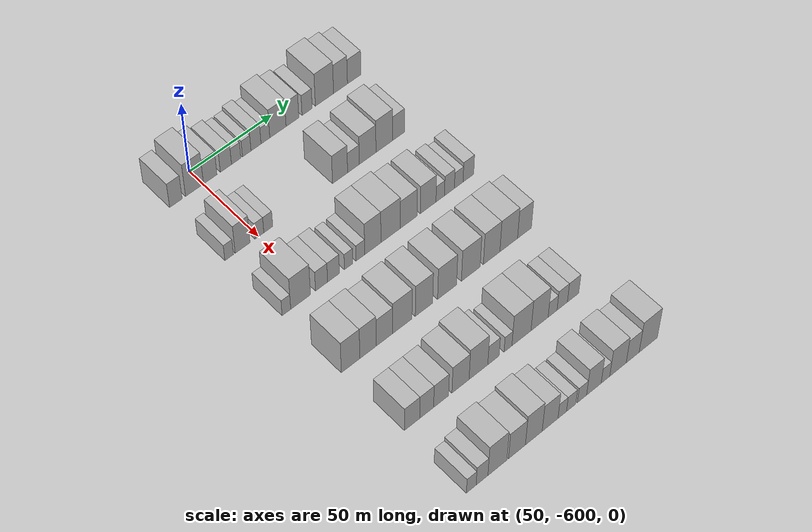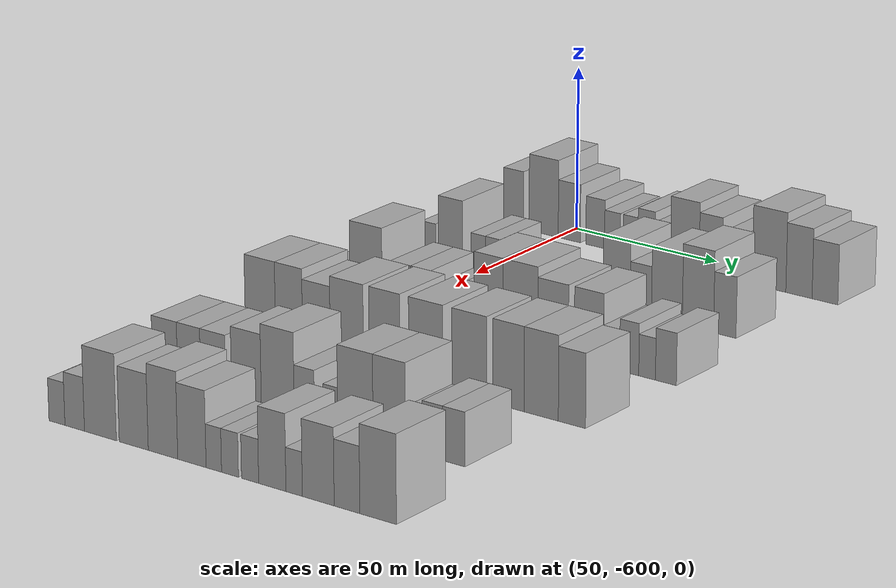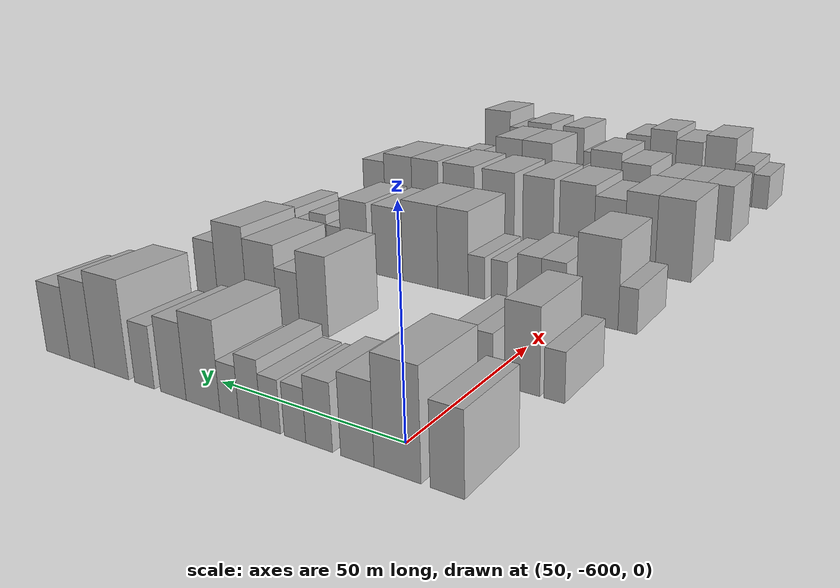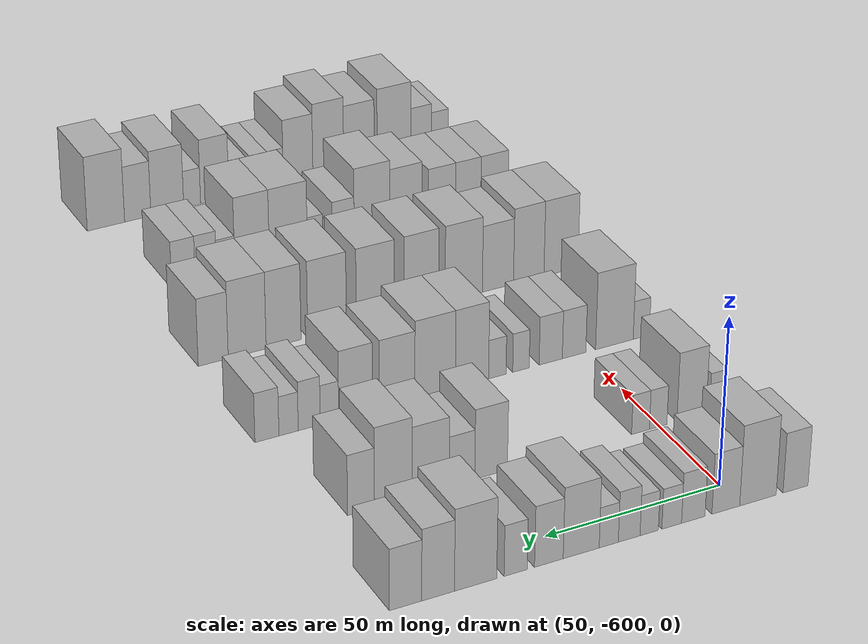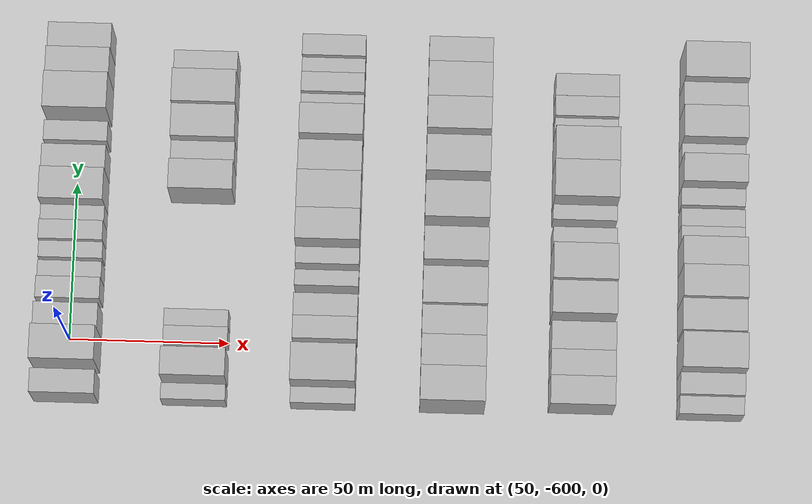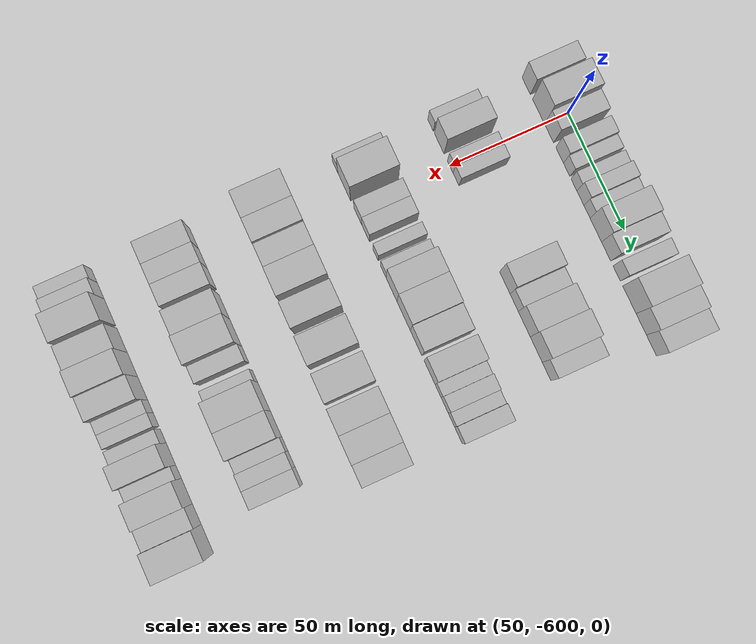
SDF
<sdf version="1.6">
 <world name="default">
  <model name="building_1">
   <static>1</static>
   <pose>50.0000 -616.2882 0 0.000000 0.000000 0.000000</pose>
   <link name="link">
    <pose>0 0 9.00 0 0 0</pose>
    <collision name="collision"><geometry><box><size>20.0000 7.4237 18.0000</size></box></geometry></collision>
    <visual name="visual">
     <cast_shadows>0</cast_shadows>
     <geometry><box><size>20.0000 7.4237 18.0000</size></box></geometry>
     <material>
      <script>
       <uri>model://HANNAS_wall/materials/scripts</uri>
       <uri>model://HANNAS_wall/materials/textures</uri>
       <name>vrc/HANNAS_wall</name>
      </script>
     </material>
    </visual>
   </link>
  </model>
  <model name="building_2">
   <static>1</static>
   <pose>50.0000 -605.2129 0 0.000000 0.000000 0.000000</pose>
   <link name="link">
    <pose>0 0 12.00 0 0 0</pose>
    <collision name="collision"><geometry><box><size>20.0000 10.7267 24.0000</size></box></geometry></collision>
    <visual name="visual">
     <cast_shadows>0</cast_shadows>
     <geometry><box><size>20.0000 10.7267 24.0000</size></box></geometry>
     <material>
      <script>
       <uri>model://HANNAS_wall/materials/scripts</uri>
       <uri>model://HANNAS_wall/materials/textures</uri>
       <name>vrc/HANNAS_wall</name>
      </script>
     </material>
    </visual>
   </link>
  </model>
  <model name="building_3">
   <static>1</static>
   <pose>50.0000 -595.8107 0 0.000000 0.000000 0.000000</pose>
   <link name="link">
    <pose>0 0 9.00 0 0 0</pose>
    <collision name="collision"><geometry><box><size>20.0000 8.0778 18.0000</size></box></geometry></collision>
    <visual name="visual">
     <cast_shadows>0</cast_shadows>
     <geometry><box><size>20.0000 8.0778 18.0000</size></box></geometry>
     <material>
      <script>
       <uri>model://HANNAS_wall/materials/scripts</uri>
       <uri>model://HANNAS_wall/materials/textures</uri>
       <name>vrc/HANNAS_wall</name>
      </script>
     </material>
    </visual>
   </link>
  </model>
  <model name="building_4">
   <static>1</static>
   <pose>50.0000 -586.3865 0 0.000000 0.000000 0.000000</pose>
   <link name="link">
    <pose>0 0 7.50 0 0 0</pose>
    <collision name="collision"><geometry><box><size>20.0000 6.7706 15.0000</size></box></geometry></collision>
    <visual name="visual">
     <cast_shadows>0</cast_shadows>
     <geometry><box><size>20.0000 6.7706 15.0000</size></box></geometry>
     <material>
      <script>
       <uri>model://HANNAS_wall/materials/scripts</uri>
       <uri>model://HANNAS_wall/materials/textures</uri>
       <name>vrc/HANNAS_wall</name>
      </script>
     </material>
    </visual>
   </link>
  </model>
  <model name="building_5">
   <static>1</static>
   <pose>50.0000 -580.1825 0 0.000000 0.000000 0.000000</pose>
   <link name="link">
    <pose>0 0 6.00 0 0 0</pose>
    <collision name="collision"><geometry><box><size>20.0000 5.6373 12.0000</size></box></geometry></collision>
    <visual name="visual">
     <cast_shadows>0</cast_shadows>
     <geometry><box><size>20.0000 5.6373 12.0000</size></box></geometry>
     <material>
      <script>
       <uri>model://HANNAS_wall/materials/scripts</uri>
       <uri>model://HANNAS_wall/materials/textures</uri>
       <name>vrc/HANNAS_wall</name>
      </script>
     </material>
    </visual>
   </link>
  </model>
  <model name="building_6">
   <static>1</static>
   <pose>50.0000 -573.7439 0 0.000000 0.000000 0.000000</pose>
   <link name="link">
    <pose>0 0 6.00 0 0 0</pose>
    <collision name="collision"><geometry><box><size>20.0000 5.2398 12.0000</size></box></geometry></collision>
    <visual name="visual">
     <cast_shadows>0</cast_shadows>
     <geometry><box><size>20.0000 5.2398 12.0000</size></box></geometry>
     <material>
      <script>
       <uri>model://HANNAS_wall/materials/scripts</uri>
       <uri>model://HANNAS_wall/materials/textures</uri>
       <name>vrc/HANNAS_wall</name>
      </script>
     </material>
    </visual>
   </link>
  </model>
  <model name="building_7">
   <static>1</static>
   <pose>50.0000 -568.0498 0 0.000000 0.000000 0.000000</pose>
   <link name="link">
    <pose>0 0 7.50 0 0 0</pose>
    <collision name="collision"><geometry><box><size>20.0000 6.1485 15.0000</size></box></geometry></collision>
    <visual name="visual">
     <cast_shadows>0</cast_shadows>
     <geometry><box><size>20.0000 6.1485 15.0000</size></box></geometry>
     <material>
      <script>
       <uri>model://HANNAS_wall/materials/scripts</uri>
       <uri>model://HANNAS_wall/materials/textures</uri>
       <name>vrc/HANNAS_wall</name>
      </script>
     </material>
    </visual>
   </link>
  </model>
  <model name="building_8">
   <static>1</static>
   <pose>50.0000 -562.2746 0 0.000000 0.000000 0.000000</pose>
   <link name="link">
    <pose>0 0 6.00 0 0 0</pose>
    <collision name="collision"><geometry><box><size>20.0000 5.4018 12.0000</size></box></geometry></collision>
    <visual name="visual">
     <cast_shadows>0</cast_shadows>
     <geometry><box><size>20.0000 5.4018 12.0000</size></box></geometry>
     <material>
      <script>
       <uri>model://HANNAS_wall/materials/scripts</uri>
       <uri>model://HANNAS_wall/materials/textures</uri>
       <name>vrc/HANNAS_wall</name>
      </script>
     </material>
    </visual>
   </link>
  </model>
  <model name="building_9">
   <static>1</static>
   <pose>50.0000 -554.5312 0 0.000000 0.000000 0.000000</pose>
   <link name="link">
    <pose>0 0 10.50 0 0 0</pose>
    <collision name="collision"><geometry><box><size>20.0000 10.0851 21.0000</size></box></geometry></collision>
    <visual name="visual">
     <cast_shadows>0</cast_shadows>
     <geometry><box><size>20.0000 10.0851 21.0000</size></box></geometry>
     <material>
      <script>
       <uri>model://HANNAS_wall/materials/scripts</uri>
       <uri>model://HANNAS_wall/materials/textures</uri>
       <name>vrc/HANNAS_wall</name>
      </script>
     </material>
    </visual>
   </link>
  </model>
  <model name="building_10">
   <static>1</static>
   <pose>50.0000 -545.5108 0 0.000000 0.000000 0.000000</pose>
   <link name="link">
    <pose>0 0 9.00 0 0 0</pose>
    <collision name="collision"><geometry><box><size>20.0000 7.9555 18.0000</size></box></geometry></collision>
    <visual name="visual">
     <cast_shadows>0</cast_shadows>
     <geometry><box><size>20.0000 7.9555 18.0000</size></box></geometry>
     <material>
      <script>
       <uri>model://HANNAS_wall/materials/scripts</uri>
       <uri>model://HANNAS_wall/materials/textures</uri>
       <name>vrc/HANNAS_wall</name>
      </script>
     </material>
    </visual>
   </link>
  </model>
  <model name="building_11">
   <static>1</static>
   <pose>50.0000 -536.3424 0 0.000000 0.000000 0.000000</pose>
   <link name="link">
    <pose>0 0 7.50 0 0 0</pose>
    <collision name="collision"><geometry><box><size>20.0000 6.3814 15.0000</size></box></geometry></collision>
    <visual name="visual">
     <cast_shadows>0</cast_shadows>
     <geometry><box><size>20.0000 6.3814 15.0000</size></box></geometry>
     <material>
      <script>
       <uri>model://HANNAS_wall/materials/scripts</uri>
       <uri>model://HANNAS_wall/materials/textures</uri>
       <name>vrc/HANNAS_wall</name>
      </script>
     </material>
    </visual>
   </link>
  </model>
  <model name="building_12">
   <static>1</static>
   <pose>50.0000 -525.3938 0 0.000000 0.000000 0.000000</pose>
   <link name="link">
    <pose>0 0 12.00 0 0 0</pose>
    <collision name="collision"><geometry><box><size>20.0000 11.5157 24.0000</size></box></geometry></collision>
    <visual name="visual">
     <cast_shadows>0</cast_shadows>
     <geometry><box><size>20.0000 11.5157 24.0000</size></box></geometry>
     <material>
      <script>
       <uri>model://HANNAS_wall/materials/scripts</uri>
       <uri>model://HANNAS_wall/materials/textures</uri>
       <name>vrc/HANNAS_wall</name>
      </script>
     </material>
    </visual>
   </link>
  </model>
  <model name="building_13">
   <static>1</static>
   <pose>50.0000 -515.2146 0 0.000000 0.000000 0.000000</pose>
   <link name="link">
    <pose>0 0 10.50 0 0 0</pose>
    <collision name="collision"><geometry><box><size>20.0000 8.8427 21.0000</size></box></geometry></collision>
    <visual name="visual">
     <cast_shadows>0</cast_shadows>
     <geometry><box><size>20.0000 8.8427 21.0000</size></box></geometry>
     <material>
      <script>
       <uri>model://HANNAS_wall/materials/scripts</uri>
       <uri>model://HANNAS_wall/materials/textures</uri>
       <name>vrc/HANNAS_wall</name>
      </script>
     </material>
    </visual>
   </link>
  </model>
  <model name="building_14">
   <static>1</static>
   <pose>50.0000 -506.4676 0 0.000000 0.000000 0.000000</pose>
   <link name="link">
    <pose>0 0 9.00 0 0 0</pose>
    <collision name="collision"><geometry><box><size>20.0000 8.6514 18.0000</size></box></geometry></collision>
    <visual name="visual">
     <cast_shadows>0</cast_shadows>
     <geometry><box><size>20.0000 8.6514 18.0000</size></box></geometry>
     <material>
      <script>
       <uri>model://HANNAS_wall/materials/scripts</uri>
       <uri>model://HANNAS_wall/materials/textures</uri>
       <name>vrc/HANNAS_wall</name>
      </script>
     </material>
    </visual>
   </link>
  </model>
  <model name="building_139">
   <static>1</static>
   <pose>90.0000 -617.4869 0 0.000000 0.000000 0.000000</pose>
   <link name="link">
    <pose>0 0 6.00 0 0 0</pose>
    <collision name="collision"><geometry><box><size>20.0000 5.0261 12.0000</size></box></geometry></collision>
    <visual name="visual">
     <cast_shadows>0</cast_shadows>
     <geometry><box><size>20.0000 5.0261 12.0000</size></box></geometry>
     <material>
      <script>
       <uri>model://HANNAS_wall/materials/scripts</uri>
       <uri>model://HANNAS_wall/materials/textures</uri>
       <name>vrc/HANNAS_wall</name>
      </script>
     </material>
    </visual>
   </link>
  </model>
  <model name="building_140">
   <static>1</static>
   <pose>90.0000 -609.5663 0 0.000000 0.000000 0.000000</pose>
   <link name="link">
    <pose>0 0 10.50 0 0 0</pose>
    <collision name="collision"><geometry><box><size>20.0000 8.8152 21.0000</size></box></geometry></collision>
    <visual name="visual">
     <cast_shadows>0</cast_shadows>
     <geometry><box><size>20.0000 8.8152 21.0000</size></box></geometry>
     <material>
      <script>
       <uri>model://HANNAS_wall/materials/scripts</uri>
       <uri>model://HANNAS_wall/materials/textures</uri>
       <name>vrc/HANNAS_wall</name>
      </script>
     </material>
    </visual>
   </link>
  </model>
  <model name="building_141">
   <static>1</static>
   <pose>90.0000 -599.5417 0 0.000000 0.000000 0.000000</pose>
   <link name="link">
    <pose>0 0 6.00 0 0 0</pose>
    <collision name="collision"><geometry><box><size>20.0000 5.2339 12.0000</size></box></geometry></collision>
    <visual name="visual">
     <cast_shadows>0</cast_shadows>
     <geometry><box><size>20.0000 5.2339 12.0000</size></box></geometry>
     <material>
      <script>
       <uri>model://HANNAS_wall/materials/scripts</uri>
       <uri>model://HANNAS_wall/materials/textures</uri>
       <name>vrc/HANNAS_wall</name>
      </script>
     </material>
    </visual>
   </link>
  </model>
  <model name="building_142">
   <static>1</static>
   <pose>90.0000 -594.2603 0 0.000000 0.000000 0.000000</pose>
   <link name="link">
    <pose>0 0 6.00 0 0 0</pose>
    <collision name="collision"><geometry><box><size>20.0000 5.3288 12.0000</size></box></geometry></collision>
    <visual name="visual">
     <cast_shadows>0</cast_shadows>
     <geometry><box><size>20.0000 5.3288 12.0000</size></box></geometry>
     <material>
      <script>
       <uri>model://HANNAS_wall/materials/scripts</uri>
       <uri>model://HANNAS_wall/materials/textures</uri>
       <name>vrc/HANNAS_wall</name>
      </script>
     </material>
    </visual>
   </link>
  </model>
  <model name="building_143">
   <static>1</static>
   <pose>90.0000 -550.5708 0 0.000000 0.000000 0.000000</pose>
   <link name="link">
    <pose>0 0 10.50 0 0 0</pose>
    <collision name="collision"><geometry><box><size>20.0000 9.3501 21.0000</size></box></geometry></collision>
    <visual name="visual">
     <cast_shadows>0</cast_shadows>
     <geometry><box><size>20.0000 9.3501 21.0000</size></box></geometry>
     <material>
      <script>
       <uri>model://HANNAS_wall/materials/scripts</uri>
       <uri>model://HANNAS_wall/materials/textures</uri>
       <name>vrc/HANNAS_wall</name>
      </script>
     </material>
    </visual>
   </link>
  </model>
  <model name="building_144">
   <static>1</static>
   <pose>90.0000 -542.2516 0 0.000000 0.000000 0.000000</pose>
   <link name="link">
    <pose>0 0 7.50 0 0 0</pose>
    <collision name="collision"><geometry><box><size>20.0000 7.2884 15.0000</size></box></geometry></collision>
    <visual name="visual">
     <cast_shadows>0</cast_shadows>
     <geometry><box><size>20.0000 7.2884 15.0000</size></box></geometry>
     <material>
      <script>
       <uri>model://HANNAS_wall/materials/scripts</uri>
       <uri>model://HANNAS_wall/materials/textures</uri>
       <name>vrc/HANNAS_wall</name>
      </script>
     </material>
    </visual>
   </link>
  </model>
  <model name="building_145">
   <static>1</static>
   <pose>90.0000 -533.3865 0 0.000000 0.000000 0.000000</pose>
   <link name="link">
    <pose>0 0 10.50 0 0 0</pose>
    <collision name="collision"><geometry><box><size>20.0000 10.4418 21.0000</size></box></geometry></collision>
    <visual name="visual">
     <cast_shadows>0</cast_shadows>
     <geometry><box><size>20.0000 10.4418 21.0000</size></box></geometry>
     <material>
      <script>
       <uri>model://HANNAS_wall/materials/scripts</uri>
       <uri>model://HANNAS_wall/materials/textures</uri>
       <name>vrc/HANNAS_wall</name>
      </script>
     </material>
    </visual>
   </link>
  </model>
  <model name="building_146">
   <static>1</static>
   <pose>90.0000 -522.9116 0 0.000000 0.000000 0.000000</pose>
   <link name="link">
    <pose>0 0 12.00 0 0 0</pose>
    <collision name="collision"><geometry><box><size>20.0000 10.5080 24.0000</size></box></geometry></collision>
    <visual name="visual">
     <cast_shadows>0</cast_shadows>
     <geometry><box><size>20.0000 10.5080 24.0000</size></box></geometry>
     <material>
      <script>
       <uri>model://HANNAS_wall/materials/scripts</uri>
       <uri>model://HANNAS_wall/materials/textures</uri>
       <name>vrc/HANNAS_wall</name>
      </script>
     </material>
    </visual>
   </link>
  </model>
  <model name="building_147">
   <static>1</static>
   <pose>90.0000 -513.9200 0 0.000000 0.000000 0.000000</pose>
   <link name="link">
    <pose>0 0 9.00 0 0 0</pose>
    <collision name="collision"><geometry><box><size>20.0000 7.4751 18.0000</size></box></geometry></collision>
    <visual name="visual">
     <cast_shadows>0</cast_shadows>
     <geometry><box><size>20.0000 7.4751 18.0000</size></box></geometry>
     <material>
      <script>
       <uri>model://HANNAS_wall/materials/scripts</uri>
       <uri>model://HANNAS_wall/materials/textures</uri>
       <name>vrc/HANNAS_wall</name>
      </script>
     </material>
    </visual>
   </link>
  </model>
  <model name="building_265">
   <static>1</static>
   <pose>130.0000 -617.4726 0 0.000000 0.000000 0.000000</pose>
   <link name="link">
    <pose>0 0 6.00 0 0 0</pose>
    <collision name="collision"><geometry><box><size>20.0000 5.0547 12.0000</size></box></geometry></collision>
    <visual name="visual">
     <cast_shadows>0</cast_shadows>
     <geometry><box><size>20.0000 5.0547 12.0000</size></box></geometry>
     <material>
      <script>
       <uri>model://HANNAS_wall/materials/scripts</uri>
       <uri>model://HANNAS_wall/materials/textures</uri>
       <name>vrc/HANNAS_wall</name>
      </script>
     </material>
    </visual>
   </link>
  </model>
  <model name="building_266">
   <static>1</static>
   <pose>130.0000 -609.1242 0 0.000000 0.000000 0.000000</pose>
   <link name="link">
    <pose>0 0 12.00 0 0 0</pose>
    <collision name="collision"><geometry><box><size>20.0000 11.6421 24.0000</size></box></geometry></collision>
    <visual name="visual">
     <cast_shadows>0</cast_shadows>
     <geometry><box><size>20.0000 11.6421 24.0000</size></box></geometry>
     <material>
      <script>
       <uri>model://HANNAS_wall/materials/scripts</uri>
       <uri>model://HANNAS_wall/materials/textures</uri>
       <name>vrc/HANNAS_wall</name>
      </script>
     </material>
    </visual>
   </link>
  </model>
  <model name="building_267">
   <static>1</static>
   <pose>130.0000 -596.7009 0 0.000000 0.000000 0.000000</pose>
   <link name="link">
    <pose>0 0 7.50 0 0 0</pose>
    <collision name="collision"><geometry><box><size>20.0000 7.2046 15.0000</size></box></geometry></collision>
    <visual name="visual">
     <cast_shadows>0</cast_shadows>
     <geometry><box><size>20.0000 7.2046 15.0000</size></box></geometry>
     <material>
      <script>
       <uri>model://HANNAS_wall/materials/scripts</uri>
       <uri>model://HANNAS_wall/materials/textures</uri>
       <name>vrc/HANNAS_wall</name>
      </script>
     </material>
    </visual>
   </link>
  </model>
  <model name="building_268">
   <static>1</static>
   <pose>130.0000 -589.5621 0 0.000000 0.000000 0.000000</pose>
   <link name="link">
    <pose>0 0 7.50 0 0 0</pose>
    <collision name="collision"><geometry><box><size>20.0000 7.0729 15.0000</size></box></geometry></collision>
    <visual name="visual">
     <cast_shadows>0</cast_shadows>
     <geometry><box><size>20.0000 7.0729 15.0000</size></box></geometry>
     <material>
      <script>
       <uri>model://HANNAS_wall/materials/scripts</uri>
       <uri>model://HANNAS_wall/materials/textures</uri>
       <name>vrc/HANNAS_wall</name>
      </script>
     </material>
    </visual>
   </link>
  </model>
  <model name="building_269">
   <static>1</static>
   <pose>130.0000 -580.5328 0 0.000000 0.000000 0.000000</pose>
   <link name="link">
    <pose>0 0 6.00 0 0 0</pose>
    <collision name="collision"><geometry><box><size>20.0000 4.9857 12.0000</size></box></geometry></collision>
    <visual name="visual">
     <cast_shadows>0</cast_shadows>
     <geometry><box><size>20.0000 4.9857 12.0000</size></box></geometry>
     <material>
      <script>
       <uri>model://HANNAS_wall/materials/scripts</uri>
       <uri>model://HANNAS_wall/materials/textures</uri>
       <name>vrc/HANNAS_wall</name>
      </script>
     </material>
    </visual>
   </link>
  </model>
  <model name="building_270">
   <static>1</static>
   <pose>130.0000 -573.4048 0 0.000000 0.000000 0.000000</pose>
   <link name="link">
    <pose>0 0 6.00 0 0 0</pose>
    <collision name="collision"><geometry><box><size>20.0000 5.2704 12.0000</size></box></geometry></collision>
    <visual name="visual">
     <cast_shadows>0</cast_shadows>
     <geometry><box><size>20.0000 5.2704 12.0000</size></box></geometry>
     <material>
      <script>
       <uri>model://HANNAS_wall/materials/scripts</uri>
       <uri>model://HANNAS_wall/materials/textures</uri>
       <name>vrc/HANNAS_wall</name>
      </script>
     </material>
    </visual>
   </link>
  </model>
  <model name="building_271">
   <static>1</static>
   <pose>130.0000 -565.8251 0 0.000000 0.000000 0.000000</pose>
   <link name="link">
    <pose>0 0 12.00 0 0 0</pose>
    <collision name="collision"><geometry><box><size>20.0000 9.8889 24.0000</size></box></geometry></collision>
    <visual name="visual">
     <cast_shadows>0</cast_shadows>
     <geometry><box><size>20.0000 9.8889 24.0000</size></box></geometry>
     <material>
      <script>
       <uri>model://HANNAS_wall/materials/scripts</uri>
       <uri>model://HANNAS_wall/materials/textures</uri>
       <name>vrc/HANNAS_wall</name>
      </script>
     </material>
    </visual>
   </link>
  </model>
  <model name="building_272">
   <static>1</static>
   <pose>130.0000 -554.9040 0 0.000000 0.000000 0.000000</pose>
   <link name="link">
    <pose>0 0 12.00 0 0 0</pose>
    <collision name="collision"><geometry><box><size>20.0000 11.9534 24.0000</size></box></geometry></collision>
    <visual name="visual">
     <cast_shadows>0</cast_shadows>
     <geometry><box><size>20.0000 11.9534 24.0000</size></box></geometry>
     <material>
      <script>
       <uri>model://HANNAS_wall/materials/scripts</uri>
       <uri>model://HANNAS_wall/materials/textures</uri>
       <name>vrc/HANNAS_wall</name>
      </script>
     </material>
    </visual>
   </link>
  </model>
  <model name="building_273">
   <static>1</static>
   <pose>130.0000 -543.7478 0 0.000000 0.000000 0.000000</pose>
   <link name="link">
    <pose>0 0 10.50 0 0 0</pose>
    <collision name="collision"><geometry><box><size>20.0000 10.3589 21.0000</size></box></geometry></collision>
    <visual name="visual">
     <cast_shadows>0</cast_shadows>
     <geometry><box><size>20.0000 10.3589 21.0000</size></box></geometry>
     <material>
      <script>
       <uri>model://HANNAS_wall/materials/scripts</uri>
       <uri>model://HANNAS_wall/materials/textures</uri>
       <name>vrc/HANNAS_wall</name>
      </script>
     </material>
    </visual>
   </link>
  </model>
  <model name="building_274">
   <static>1</static>
   <pose>130.0000 -531.6636 0 0.000000 0.000000 0.000000</pose>
   <link name="link">
    <pose>0 0 10.50 0 0 0</pose>
    <collision name="collision"><geometry><box><size>20.0000 9.8095 21.0000</size></box></geometry></collision>
    <visual name="visual">
     <cast_shadows>0</cast_shadows>
     <geometry><box><size>20.0000 9.8095 21.0000</size></box></geometry>
     <material>
      <script>
       <uri>model://HANNAS_wall/materials/scripts</uri>
       <uri>model://HANNAS_wall/materials/textures</uri>
       <name>vrc/HANNAS_wall</name>
      </script>
     </material>
    </visual>
   </link>
  </model>
  <model name="building_275">
   <static>1</static>
   <pose>130.0000 -524.1002 0 0.000000 0.000000 0.000000</pose>
   <link name="link">
    <pose>0 0 6.00 0 0 0</pose>
    <collision name="collision"><geometry><box><size>20.0000 5.3172 12.0000</size></box></geometry></collision>
    <visual name="visual">
     <cast_shadows>0</cast_shadows>
     <geometry><box><size>20.0000 5.3172 12.0000</size></box></geometry>
     <material>
      <script>
       <uri>model://HANNAS_wall/materials/scripts</uri>
       <uri>model://HANNAS_wall/materials/textures</uri>
       <name>vrc/HANNAS_wall</name>
      </script>
     </material>
    </visual>
   </link>
  </model>
  <model name="building_276">
   <static>1</static>
   <pose>130.0000 -518.2867 0 0.000000 0.000000 0.000000</pose>
   <link name="link">
    <pose>0 0 7.50 0 0 0</pose>
    <collision name="collision"><geometry><box><size>20.0000 6.3098 15.0000</size></box></geometry></collision>
    <visual name="visual">
     <cast_shadows>0</cast_shadows>
     <geometry><box><size>20.0000 6.3098 15.0000</size></box></geometry>
     <material>
      <script>
       <uri>model://HANNAS_wall/materials/scripts</uri>
       <uri>model://HANNAS_wall/materials/textures</uri>
       <name>vrc/HANNAS_wall</name>
      </script>
     </material>
    </visual>
   </link>
  </model>
  <model name="building_277">
   <static>1</static>
   <pose>130.0000 -512.3871 0 0.000000 0.000000 0.000000</pose>
   <link name="link">
    <pose>0 0 6.00 0 0 0</pose>
    <collision name="collision"><geometry><box><size>20.0000 5.4895 12.0000</size></box></geometry></collision>
    <visual name="visual">
     <cast_shadows>0</cast_shadows>
     <geometry><box><size>20.0000 5.4895 12.0000</size></box></geometry>
     <material>
      <script>
       <uri>model://HANNAS_wall/materials/scripts</uri>
       <uri>model://HANNAS_wall/materials/textures</uri>
       <name>vrc/HANNAS_wall</name>
      </script>
     </material>
    </visual>
   </link>
  </model>
  <model name="building_278">
   <static>1</static>
   <pose>130.0000 -506.2444 0 0.000000 0.000000 0.000000</pose>
   <link name="link">
    <pose>0 0 7.50 0 0 0</pose>
    <collision name="collision"><geometry><box><size>20.0000 6.7959 15.0000</size></box></geometry></collision>
    <visual name="visual">
     <cast_shadows>0</cast_shadows>
     <geometry><box><size>20.0000 6.7959 15.0000</size></box></geometry>
     <material>
      <script>
       <uri>model://HANNAS_wall/materials/scripts</uri>
       <uri>model://HANNAS_wall/materials/textures</uri>
       <name>vrc/HANNAS_wall</name>
      </script>
     </material>
    </visual>
   </link>
  </model>
  <model name="building_402">
   <static>1</static>
   <pose>170.0000 -614.5802 0 0.000000 0.000000 0.000000</pose>
   <link name="link">
    <pose>0 0 12.00 0 0 0</pose>
    <collision name="collision"><geometry><box><size>20.0000 10.8396 24.0000</size></box></geometry></collision>
    <visual name="visual">
     <cast_shadows>0</cast_shadows>
     <geometry><box><size>20.0000 10.8396 24.0000</size></box></geometry>
     <material>
      <script>
       <uri>model://HANNAS_wall/materials/scripts</uri>
       <uri>model://HANNAS_wall/materials/textures</uri>
       <name>vrc/HANNAS_wall</name>
      </script>
     </material>
    </visual>
   </link>
  </model>
  <model name="building_403">
   <static>1</static>
   <pose>170.0000 -604.3481 0 0.000000 0.000000 0.000000</pose>
   <link name="link">
    <pose>0 0 12.00 0 0 0</pose>
    <collision name="collision"><geometry><box><size>20.0000 9.6246 24.0000</size></box></geometry></collision>
    <visual name="visual">
     <cast_shadows>0</cast_shadows>
     <geometry><box><size>20.0000 9.6246 24.0000</size></box></geometry>
     <material>
      <script>
       <uri>model://HANNAS_wall/materials/scripts</uri>
       <uri>model://HANNAS_wall/materials/textures</uri>
       <name>vrc/HANNAS_wall</name>
      </script>
     </material>
    </visual>
   </link>
  </model>
  <model name="building_404">
   <static>1</static>
   <pose>170.0000 -594.6599 0 0.000000 0.000000 0.000000</pose>
   <link name="link">
    <pose>0 0 10.50 0 0 0</pose>
    <collision name="collision"><geometry><box><size>20.0000 9.7518 21.0000</size></box></geometry></collision>
    <visual name="visual">
     <cast_shadows>0</cast_shadows>
     <geometry><box><size>20.0000 9.7518 21.0000</size></box></geometry>
     <material>
      <script>
       <uri>model://HANNAS_wall/materials/scripts</uri>
       <uri>model://HANNAS_wall/materials/textures</uri>
       <name>vrc/HANNAS_wall</name>
      </script>
     </material>
    </visual>
   </link>
  </model>
  <model name="building_405">
   <static>1</static>
   <pose>170.0000 -583.9959 0 0.000000 0.000000 0.000000</pose>
   <link name="link">
    <pose>0 0 12.00 0 0 0</pose>
    <collision name="collision"><geometry><box><size>20.0000 11.5762 24.0000</size></box></geometry></collision>
    <visual name="visual">
     <cast_shadows>0</cast_shadows>
     <geometry><box><size>20.0000 11.5762 24.0000</size></box></geometry>
     <material>
      <script>
       <uri>model://HANNAS_wall/materials/scripts</uri>
       <uri>model://HANNAS_wall/materials/textures</uri>
       <name>vrc/HANNAS_wall</name>
      </script>
     </material>
    </visual>
   </link>
  </model>
  <model name="building_406">
   <static>1</static>
   <pose>170.0000 -570.9323 0 0.000000 0.000000 0.000000</pose>
   <link name="link">
    <pose>0 0 12.00 0 0 0</pose>
    <collision name="collision"><geometry><box><size>20.0000 10.5510 24.0000</size></box></geometry></collision>
    <visual name="visual">
     <cast_shadows>0</cast_shadows>
     <geometry><box><size>20.0000 10.5510 24.0000</size></box></geometry>
     <material>
      <script>
       <uri>model://HANNAS_wall/materials/scripts</uri>
       <uri>model://HANNAS_wall/materials/textures</uri>
       <name>vrc/HANNAS_wall</name>
      </script>
     </material>
    </visual>
   </link>
  </model>
  <model name="building_407">
   <static>1</static>
   <pose>170.0000 -556.8683 0 0.000000 0.000000 0.000000</pose>
   <link name="link">
    <pose>0 0 12.00 0 0 0</pose>
    <collision name="collision"><geometry><box><size>20.0000 11.5770 24.0000</size></box></geometry></collision>
    <visual name="visual">
     <cast_shadows>0</cast_shadows>
     <geometry><box><size>20.0000 11.5770 24.0000</size></box></geometry>
     <material>
      <script>
       <uri>model://HANNAS_wall/materials/scripts</uri>
       <uri>model://HANNAS_wall/materials/textures</uri>
       <name>vrc/HANNAS_wall</name>
      </script>
     </material>
    </visual>
   </link>
  </model>
  <model name="building_408">
   <static>1</static>
   <pose>170.0000 -542.2801 0 0.000000 0.000000 0.000000</pose>
   <link name="link">
    <pose>0 0 12.00 0 0 0</pose>
    <collision name="collision"><geometry><box><size>20.0000 11.5994 24.0000</size></box></geometry></collision>
    <visual name="visual">
     <cast_shadows>0</cast_shadows>
     <geometry><box><size>20.0000 11.5994 24.0000</size></box></geometry>
     <material>
      <script>
       <uri>model://HANNAS_wall/materials/scripts</uri>
       <uri>model://HANNAS_wall/materials/textures</uri>
       <name>vrc/HANNAS_wall</name>
      </script>
     </material>
    </visual>
   </link>
  </model>
  <model name="building_409">
   <static>1</static>
   <pose>170.0000 -529.3059 0 0.000000 0.000000 0.000000</pose>
   <link name="link">
    <pose>0 0 12.00 0 0 0</pose>
    <collision name="collision"><geometry><box><size>20.0000 10.3492 24.0000</size></box></geometry></collision>
    <visual name="visual">
     <cast_shadows>0</cast_shadows>
     <geometry><box><size>20.0000 10.3492 24.0000</size></box></geometry>
     <material>
      <script>
       <uri>model://HANNAS_wall/materials/scripts</uri>
       <uri>model://HANNAS_wall/materials/textures</uri>
       <name>vrc/HANNAS_wall</name>
      </script>
     </material>
    </visual>
   </link>
  </model>
  <model name="building_410">
   <static>1</static>
   <pose>170.0000 -518.5568 0 0.000000 0.000000 0.000000</pose>
   <link name="link">
    <pose>0 0 12.00 0 0 0</pose>
    <collision name="collision"><geometry><box><size>20.0000 11.1489 24.0000</size></box></geometry></collision>
    <visual name="visual">
     <cast_shadows>0</cast_shadows>
     <geometry><box><size>20.0000 11.1489 24.0000</size></box></geometry>
     <material>
      <script>
       <uri>model://HANNAS_wall/materials/scripts</uri>
       <uri>model://HANNAS_wall/materials/textures</uri>
       <name>vrc/HANNAS_wall</name>
      </script>
     </material>
    </visual>
   </link>
  </model>
  <model name="building_411">
   <static>1</static>
   <pose>170.0000 -508.5968 0 0.000000 0.000000 0.000000</pose>
   <link name="link">
    <pose>0 0 10.50 0 0 0</pose>
    <collision name="collision"><geometry><box><size>20.0000 8.7712 21.0000</size></box></geometry></collision>
    <visual name="visual">
     <cast_shadows>0</cast_shadows>
     <geometry><box><size>20.0000 8.7712 21.0000</size></box></geometry>
     <material>
      <script>
       <uri>model://HANNAS_wall/materials/scripts</uri>
       <uri>model://HANNAS_wall/materials/textures</uri>
       <name>vrc/HANNAS_wall</name>
      </script>
     </material>
    </visual>
   </link>
  </model>
  <model name="building_536">
   <static>1</static>
   <pose>210.0000 -614.5444 0 0.000000 0.000000 0.000000</pose>
   <link name="link">
    <pose>0 0 9.00 0 0 0</pose>
    <collision name="collision"><geometry><box><size>20.0000 8.9111 18.0000</size></box></geometry></collision>
    <visual name="visual">
     <cast_shadows>0</cast_shadows>
     <geometry><box><size>20.0000 8.9111 18.0000</size></box></geometry>
     <material>
      <script>
       <uri>model://HANNAS_wall/materials/scripts</uri>
       <uri>model://HANNAS_wall/materials/textures</uri>
       <name>vrc/HANNAS_wall</name>
      </script>
     </material>
    </visual>
   </link>
  </model>
  <model name="building_537">
   <static>1</static>
   <pose>210.0000 -606.0187 0 0.000000 0.000000 0.000000</pose>
   <link name="link">
    <pose>0 0 9.00 0 0 0</pose>
    <collision name="collision"><geometry><box><size>20.0000 8.1404 18.0000</size></box></geometry></collision>
    <visual name="visual">
     <cast_shadows>0</cast_shadows>
     <geometry><box><size>20.0000 8.1404 18.0000</size></box></geometry>
     <material>
      <script>
       <uri>model://HANNAS_wall/materials/scripts</uri>
       <uri>model://HANNAS_wall/materials/textures</uri>
       <name>vrc/HANNAS_wall</name>
      </script>
     </material>
    </visual>
   </link>
  </model>
  <model name="building_538">
   <static>1</static>
   <pose>210.0000 -597.5399 0 0.000000 0.000000 0.000000</pose>
   <link name="link">
    <pose>0 0 9.00 0 0 0</pose>
    <collision name="collision"><geometry><box><size>20.0000 8.8172 18.0000</size></box></geometry></collision>
    <visual name="visual">
     <cast_shadows>0</cast_shadows>
     <geometry><box><size>20.0000 8.8172 18.0000</size></box></geometry>
     <material>
      <script>
       <uri>model://HANNAS_wall/materials/scripts</uri>
       <uri>model://HANNAS_wall/materials/textures</uri>
       <name>vrc/HANNAS_wall</name>
      </script>
     </material>
    </visual>
   </link>
  </model>
  <model name="building_539">
   <static>1</static>
   <pose>210.0000 -586.0134 0 0.000000 0.000000 0.000000</pose>
   <link name="link">
    <pose>0 0 10.50 0 0 0</pose>
    <collision name="collision"><geometry><box><size>20.0000 10.2357 21.0000</size></box></geometry></collision>
    <visual name="visual">
     <cast_shadows>0</cast_shadows>
     <geometry><box><size>20.0000 10.2357 21.0000</size></box></geometry>
     <material>
      <script>
       <uri>model://HANNAS_wall/materials/scripts</uri>
       <uri>model://HANNAS_wall/materials/textures</uri>
       <name>vrc/HANNAS_wall</name>
      </script>
     </material>
    </visual>
   </link>
  </model>
  <model name="building_540">
   <static>1</static>
   <pose>210.0000 -575.2748 0 0.000000 0.000000 0.000000</pose>
   <link name="link">
    <pose>0 0 12.00 0 0 0</pose>
    <collision name="collision"><geometry><box><size>20.0000 11.2415 24.0000</size></box></geometry></collision>
    <visual name="visual">
     <cast_shadows>0</cast_shadows>
     <geometry><box><size>20.0000 11.2415 24.0000</size></box></geometry>
     <material>
      <script>
       <uri>model://HANNAS_wall/materials/scripts</uri>
       <uri>model://HANNAS_wall/materials/textures</uri>
       <name>vrc/HANNAS_wall</name>
      </script>
     </material>
    </visual>
   </link>
  </model>
  <model name="building_541">
   <static>1</static>
   <pose>210.0000 -566.2255 0 0.000000 0.000000 0.000000</pose>
   <link name="link">
    <pose>0 0 7.50 0 0 0</pose>
    <collision name="collision"><geometry><box><size>20.0000 6.8570 15.0000</size></box></geometry></collision>
    <visual name="visual">
     <cast_shadows>0</cast_shadows>
     <geometry><box><size>20.0000 6.8570 15.0000</size></box></geometry>
     <material>
      <script>
       <uri>model://HANNAS_wall/materials/scripts</uri>
       <uri>model://HANNAS_wall/materials/textures</uri>
       <name>vrc/HANNAS_wall</name>
      </script>
     </material>
    </visual>
   </link>
  </model>
  <model name="building_542">
   <static>1</static>
   <pose>210.0000 -557.3917 0 0.000000 0.000000 0.000000</pose>
   <link name="link">
    <pose>0 0 6.00 0 0 0</pose>
    <collision name="collision"><geometry><box><size>20.0000 4.8107 12.0000</size></box></geometry></collision>
    <visual name="visual">
     <cast_shadows>0</cast_shadows>
     <geometry><box><size>20.0000 4.8107 12.0000</size></box></geometry>
     <material>
      <script>
       <uri>model://HANNAS_wall/materials/scripts</uri>
       <uri>model://HANNAS_wall/materials/textures</uri>
       <name>vrc/HANNAS_wall</name>
      </script>
     </material>
    </visual>
   </link>
  </model>
  <model name="building_543">
   <static>1</static>
   <pose>210.0000 -549.1190 0 0.000000 0.000000 0.000000</pose>
   <link name="link">
    <pose>0 0 12.00 0 0 0</pose>
    <collision name="collision"><geometry><box><size>20.0000 11.7348 24.0000</size></box></geometry></collision>
    <visual name="visual">
     <cast_shadows>0</cast_shadows>
     <geometry><box><size>20.0000 11.7348 24.0000</size></box></geometry>
     <material>
      <script>
       <uri>model://HANNAS_wall/materials/scripts</uri>
       <uri>model://HANNAS_wall/materials/textures</uri>
       <name>vrc/HANNAS_wall</name>
      </script>
     </material>
    </visual>
   </link>
  </model>
  <model name="building_544">
   <static>1</static>
   <pose>210.0000 -537.9523 0 0.000000 0.000000 0.000000</pose>
   <link name="link">
    <pose>0 0 12.00 0 0 0</pose>
    <collision name="collision"><geometry><box><size>20.0000 10.5986 24.0000</size></box></geometry></collision>
    <visual name="visual">
     <cast_shadows>0</cast_shadows>
     <geometry><box><size>20.0000 10.5986 24.0000</size></box></geometry>
     <material>
      <script>
       <uri>model://HANNAS_wall/materials/scripts</uri>
       <uri>model://HANNAS_wall/materials/textures</uri>
       <name>vrc/HANNAS_wall</name>
      </script>
     </material>
    </visual>
   </link>
  </model>
  <model name="building_545">
   <static>1</static>
   <pose>210.0000 -529.8693 0 0.000000 0.000000 0.000000</pose>
   <link name="link">
    <pose>0 0 6.00 0 0 0</pose>
    <collision name="collision"><geometry><box><size>20.0000 5.5674 12.0000</size></box></geometry></collision>
    <visual name="visual">
     <cast_shadows>0</cast_shadows>
     <geometry><box><size>20.0000 5.5674 12.0000</size></box></geometry>
     <material>
      <script>
       <uri>model://HANNAS_wall/materials/scripts</uri>
       <uri>model://HANNAS_wall/materials/textures</uri>
       <name>vrc/HANNAS_wall</name>
      </script>
     </material>
    </visual>
   </link>
  </model>
  <model name="building_546">
   <static>1</static>
   <pose>210.0000 -523.8435 0 0.000000 0.000000 0.000000</pose>
   <link name="link">
    <pose>0 0 7.50 0 0 0</pose>
    <collision name="collision"><geometry><box><size>20.0000 6.4842 15.0000</size></box></geometry></collision>
    <visual name="visual">
     <cast_shadows>0</cast_shadows>
     <geometry><box><size>20.0000 6.4842 15.0000</size></box></geometry>
     <material>
      <script>
       <uri>model://HANNAS_wall/materials/scripts</uri>
       <uri>model://HANNAS_wall/materials/textures</uri>
       <name>vrc/HANNAS_wall</name>
      </script>
     </material>
    </visual>
   </link>
  </model>
  <model name="building_547">
   <static>1</static>
   <pose>210.0000 -517.0310 0 0.000000 0.000000 0.000000</pose>
   <link name="link">
    <pose>0 0 7.50 0 0 0</pose>
    <collision name="collision"><geometry><box><size>20.0000 7.1406 15.0000</size></box></geometry></collision>
    <visual name="visual">
     <cast_shadows>0</cast_shadows>
     <geometry><box><size>20.0000 7.1406 15.0000</size></box></geometry>
     <material>
      <script>
       <uri>model://HANNAS_wall/materials/scripts</uri>
       <uri>model://HANNAS_wall/materials/textures</uri>
       <name>vrc/HANNAS_wall</name>
      </script>
     </material>
    </visual>
   </link>
  </model>
  <model name="building_667">
   <static>1</static>
   <pose>250.0000 -617.1835 0 0.000000 0.000000 0.000000</pose>
   <link name="link">
    <pose>0 0 6.00 0 0 0</pose>
    <collision name="collision"><geometry><box><size>20.0000 5.6330 12.0000</size></box></geometry></collision>
    <visual name="visual">
     <cast_shadows>0</cast_shadows>
     <geometry><box><size>20.0000 5.6330 12.0000</size></box></geometry>
     <material>
      <script>
       <uri>model://HANNAS_wall/materials/scripts</uri>
       <uri>model://HANNAS_wall/materials/textures</uri>
       <name>vrc/HANNAS_wall</name>
      </script>
     </material>
    </visual>
   </link>
  </model>
  <model name="building_668">
   <static>1</static>
   <pose>250.0000 -610.9343 0 0.000000 0.000000 0.000000</pose>
   <link name="link">
    <pose>0 0 7.50 0 0 0</pose>
    <collision name="collision"><geometry><box><size>20.0000 6.8654 15.0000</size></box></geometry></collision>
    <visual name="visual">
     <cast_shadows>0</cast_shadows>
     <geometry><box><size>20.0000 6.8654 15.0000</size></box></geometry>
     <material>
      <script>
       <uri>model://HANNAS_wall/materials/scripts</uri>
       <uri>model://HANNAS_wall/materials/textures</uri>
       <name>vrc/HANNAS_wall</name>
      </script>
     </material>
    </visual>
   </link>
  </model>
  <model name="building_669">
   <static>1</static>
   <pose>250.0000 -601.9471 0 0.000000 0.000000 0.000000</pose>
   <link name="link">
    <pose>0 0 12.00 0 0 0</pose>
    <collision name="collision"><geometry><box><size>20.0000 11.1090 24.0000</size></box></geometry></collision>
    <visual name="visual">
     <cast_shadows>0</cast_shadows>
     <geometry><box><size>20.0000 11.1090 24.0000</size></box></geometry>
     <material>
      <script>
       <uri>model://HANNAS_wall/materials/scripts</uri>
       <uri>model://HANNAS_wall/materials/textures</uri>
       <name>vrc/HANNAS_wall</name>
      </script>
     </material>
    </visual>
   </link>
  </model>
  <model name="building_670">
   <static>1</static>
   <pose>250.0000 -590.4005 0 0.000000 0.000000 0.000000</pose>
   <link name="link">
    <pose>0 0 10.50 0 0 0</pose>
    <collision name="collision"><geometry><box><size>20.0000 9.9842 21.0000</size></box></geometry></collision>
    <visual name="visual">
     <cast_shadows>0</cast_shadows>
     <geometry><box><size>20.0000 9.9842 21.0000</size></box></geometry>
     <material>
      <script>
       <uri>model://HANNAS_wall/materials/scripts</uri>
       <uri>model://HANNAS_wall/materials/textures</uri>
       <name>vrc/HANNAS_wall</name>
      </script>
     </material>
    </visual>
   </link>
  </model>
  <model name="building_671">
   <static>1</static>
   <pose>250.0000 -580.3955 0 0.000000 0.000000 0.000000</pose>
   <link name="link">
    <pose>0 0 12.00 0 0 0</pose>
    <collision name="collision"><geometry><box><size>20.0000 10.0258 24.0000</size></box></geometry></collision>
    <visual name="visual">
     <cast_shadows>0</cast_shadows>
     <geometry><box><size>20.0000 10.0258 24.0000</size></box></geometry>
     <material>
      <script>
       <uri>model://HANNAS_wall/materials/scripts</uri>
       <uri>model://HANNAS_wall/materials/textures</uri>
       <name>vrc/HANNAS_wall</name>
      </script>
     </material>
    </visual>
   </link>
  </model>
  <model name="building_672">
   <static>1</static>
   <pose>250.0000 -570.6116 0 0.000000 0.000000 0.000000</pose>
   <link name="link">
    <pose>0 0 10.50 0 0 0</pose>
    <collision name="collision"><geometry><box><size>20.0000 9.5419 21.0000</size></box></geometry></collision>
    <visual name="visual">
     <cast_shadows>0</cast_shadows>
     <geometry><box><size>20.0000 9.5419 21.0000</size></box></geometry>
     <material>
      <script>
       <uri>model://HANNAS_wall/materials/scripts</uri>
       <uri>model://HANNAS_wall/materials/textures</uri>
       <name>vrc/HANNAS_wall</name>
      </script>
     </material>
    </visual>
   </link>
  </model>
  <model name="building_673">
   <static>1</static>
   <pose>250.0000 -563.2617 0 0.000000 0.000000 0.000000</pose>
   <link name="link">
    <pose>0 0 6.00 0 0 0</pose>
    <collision name="collision"><geometry><box><size>20.0000 5.1578 12.0000</size></box></geometry></collision>
    <visual name="visual">
     <cast_shadows>0</cast_shadows>
     <geometry><box><size>20.0000 5.1578 12.0000</size></box></geometry>
     <material>
      <script>
       <uri>model://HANNAS_wall/materials/scripts</uri>
       <uri>model://HANNAS_wall/materials/textures</uri>
       <name>vrc/HANNAS_wall</name>
      </script>
     </material>
    </visual>
   </link>
  </model>
  <model name="building_674">
   <static>1</static>
   <pose>250.0000 -557.8737 0 0.000000 0.000000 0.000000</pose>
   <link name="link">
    <pose>0 0 6.00 0 0 0</pose>
    <collision name="collision"><geometry><box><size>20.0000 5.6183 12.0000</size></box></geometry></collision>
    <visual name="visual">
     <cast_shadows>0</cast_shadows>
     <geometry><box><size>20.0000 5.6183 12.0000</size></box></geometry>
     <material>
      <script>
       <uri>model://HANNAS_wall/materials/scripts</uri>
       <uri>model://HANNAS_wall/materials/textures</uri>
       <name>vrc/HANNAS_wall</name>
      </script>
     </material>
    </visual>
   </link>
  </model>
  <model name="building_675">
   <static>1</static>
   <pose>250.0000 -551.2430 0 0.000000 0.000000 0.000000</pose>
   <link name="link">
    <pose>0 0 6.00 0 0 0</pose>
    <collision name="collision"><geometry><box><size>20.0000 5.6432 12.0000</size></box></geometry></collision>
    <visual name="visual">
     <cast_shadows>0</cast_shadows>
     <geometry><box><size>20.0000 5.6432 12.0000</size></box></geometry>
     <material>
      <script>
       <uri>model://HANNAS_wall/materials/scripts</uri>
       <uri>model://HANNAS_wall/materials/textures</uri>
       <name>vrc/HANNAS_wall</name>
      </script>
     </material>
    </visual>
   </link>
  </model>
  <model name="building_676">
   <static>1</static>
   <pose>250.0000 -543.9552 0 0.000000 0.000000 0.000000</pose>
   <link name="link">
    <pose>0 0 10.50 0 0 0</pose>
    <collision name="collision"><geometry><box><size>20.0000 8.9324 21.0000</size></box></geometry></collision>
    <visual name="visual">
     <cast_shadows>0</cast_shadows>
     <geometry><box><size>20.0000 8.9324 21.0000</size></box></geometry>
     <material>
      <script>
       <uri>model://HANNAS_wall/materials/scripts</uri>
       <uri>model://HANNAS_wall/materials/textures</uri>
       <name>vrc/HANNAS_wall</name>
      </script>
     </material>
    </visual>
   </link>
  </model>
  <model name="building_677">
   <static>1</static>
   <pose>250.0000 -536.8310 0 0.000000 0.000000 0.000000</pose>
   <link name="link">
    <pose>0 0 6.00 0 0 0</pose>
    <collision name="collision"><geometry><box><size>20.0000 5.3159 12.0000</size></box></geometry></collision>
    <visual name="visual">
     <cast_shadows>0</cast_shadows>
     <geometry><box><size>20.0000 5.3159 12.0000</size></box></geometry>
     <material>
      <script>
       <uri>model://HANNAS_wall/materials/scripts</uri>
       <uri>model://HANNAS_wall/materials/textures</uri>
       <name>vrc/HANNAS_wall</name>
      </script>
     </material>
    </visual>
   </link>
  </model>
  <model name="building_678">
   <static>1</static>
   <pose>250.0000 -529.0536 0 0.000000 0.000000 0.000000</pose>
   <link name="link">
    <pose>0 0 10.50 0 0 0</pose>
    <collision name="collision"><geometry><box><size>20.0000 10.2389 21.0000</size></box></geometry></collision>
    <visual name="visual">
     <cast_shadows>0</cast_shadows>
     <geometry><box><size>20.0000 10.2389 21.0000</size></box></geometry>
     <material>
      <script>
       <uri>model://HANNAS_wall/materials/scripts</uri>
       <uri>model://HANNAS_wall/materials/textures</uri>
       <name>vrc/HANNAS_wall</name>
      </script>
     </material>
    </visual>
   </link>
  </model>
  <model name="building_679">
   <static>1</static>
   <pose>250.0000 -519.8504 0 0.000000 0.000000 0.000000</pose>
   <link name="link">
    <pose>0 0 9.00 0 0 0</pose>
    <collision name="collision"><geometry><box><size>20.0000 8.1676 18.0000</size></box></geometry></collision>
    <visual name="visual">
     <cast_shadows>0</cast_shadows>
     <geometry><box><size>20.0000 8.1676 18.0000</size></box></geometry>
     <material>
      <script>
       <uri>model://HANNAS_wall/materials/scripts</uri>
       <uri>model://HANNAS_wall/materials/textures</uri>
       <name>vrc/HANNAS_wall</name>
      </script>
     </material>
    </visual>
   </link>
  </model>
  <model name="building_680">
   <static>1</static>
   <pose>250.0000 -510.0131 0 0.000000 0.000000 0.000000</pose>
   <link name="link">
    <pose>0 0 12.00 0 0 0</pose>
    <collision name="collision"><geometry><box><size>20.0000 11.5071 24.0000</size></box></geometry></collision>
    <visual name="visual">
     <cast_shadows>0</cast_shadows>
     <geometry><box><size>20.0000 11.5071 24.0000</size></box></geometry>
     <material>
      <script>
       <uri>model://HANNAS_wall/materials/scripts</uri>
       <uri>model://HANNAS_wall/materials/textures</uri>
       <name>vrc/HANNAS_wall</name>
      </script>
     </material>
    </visual>
   </link>
  </model>
 </world>
</sdf>
